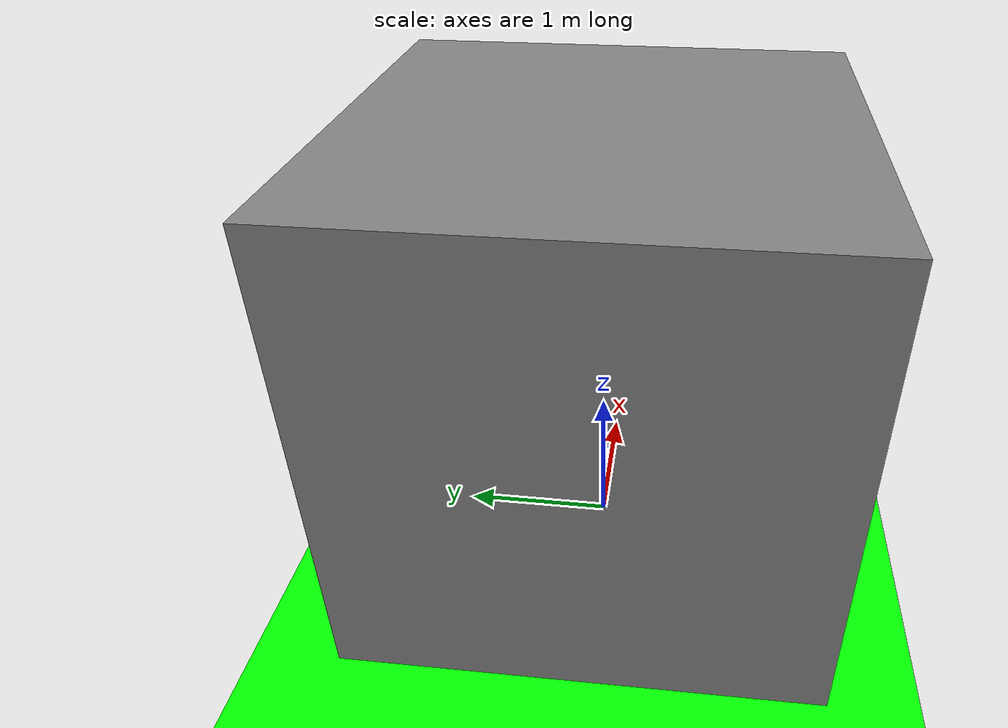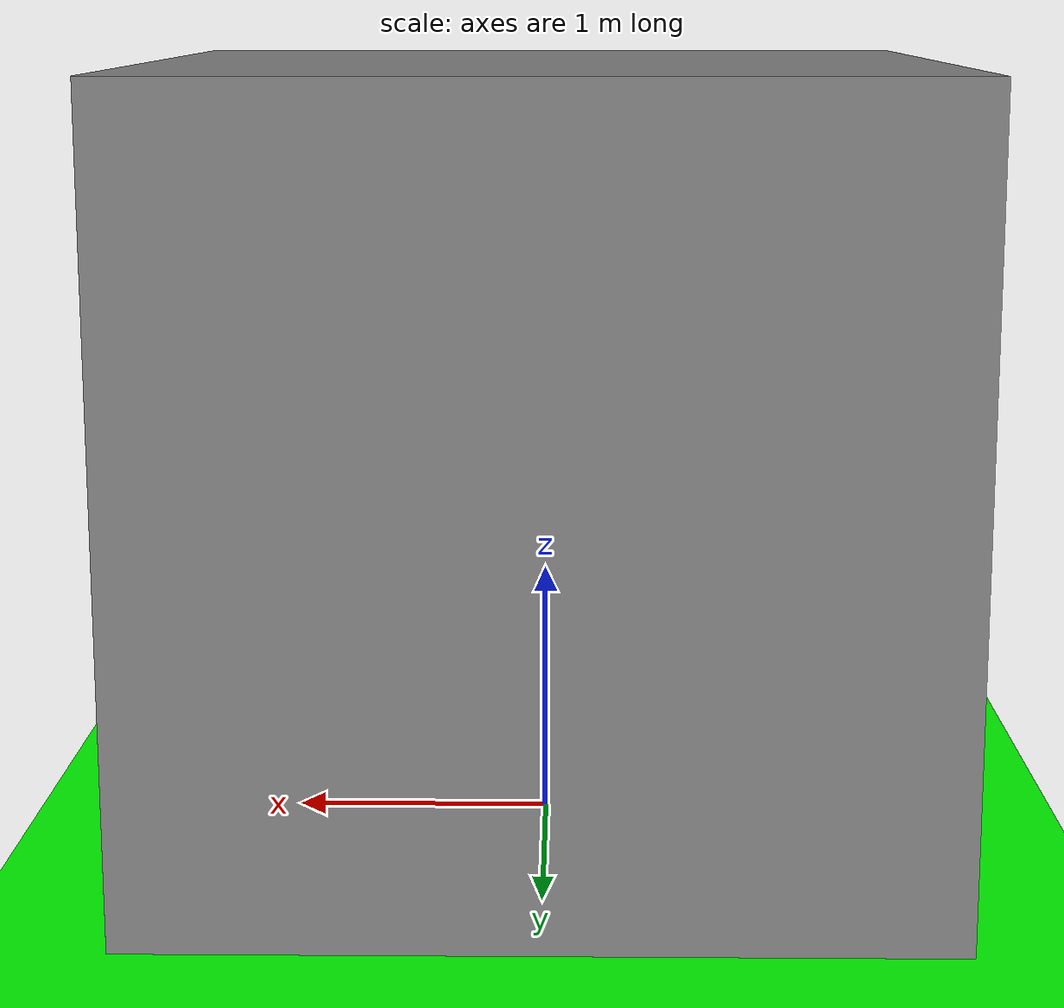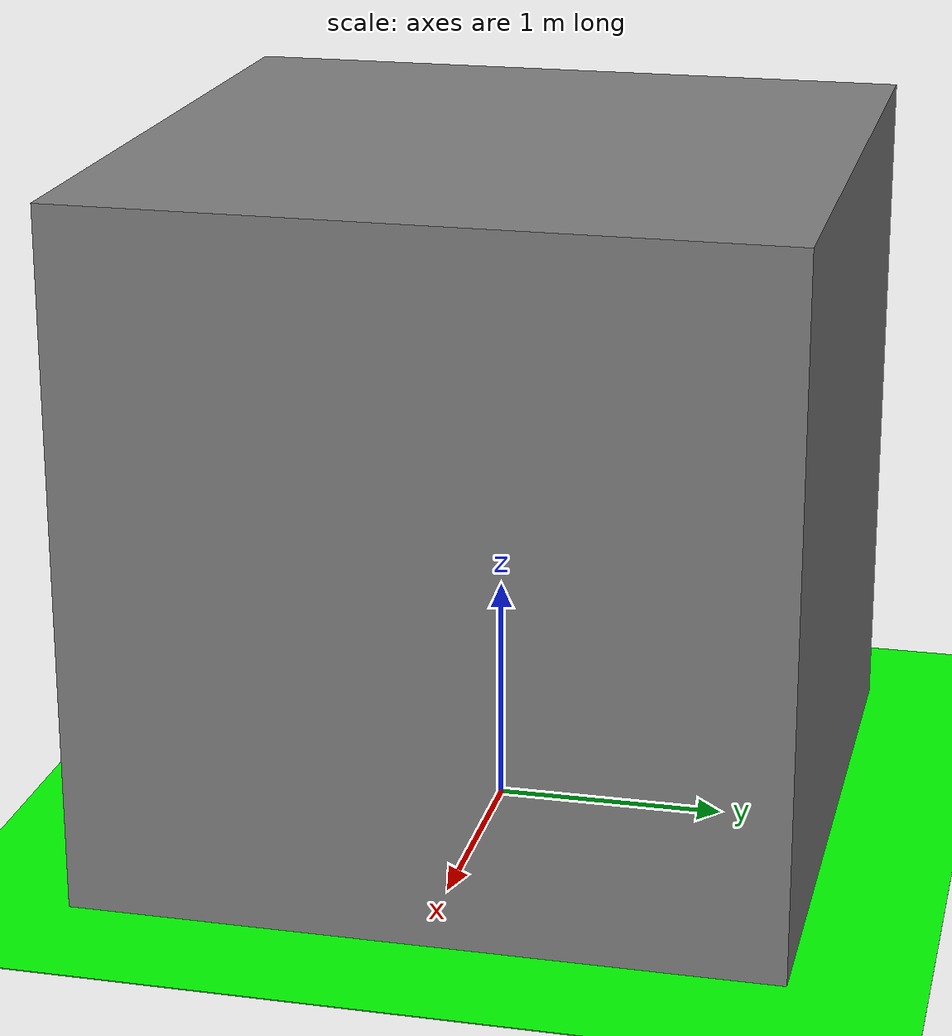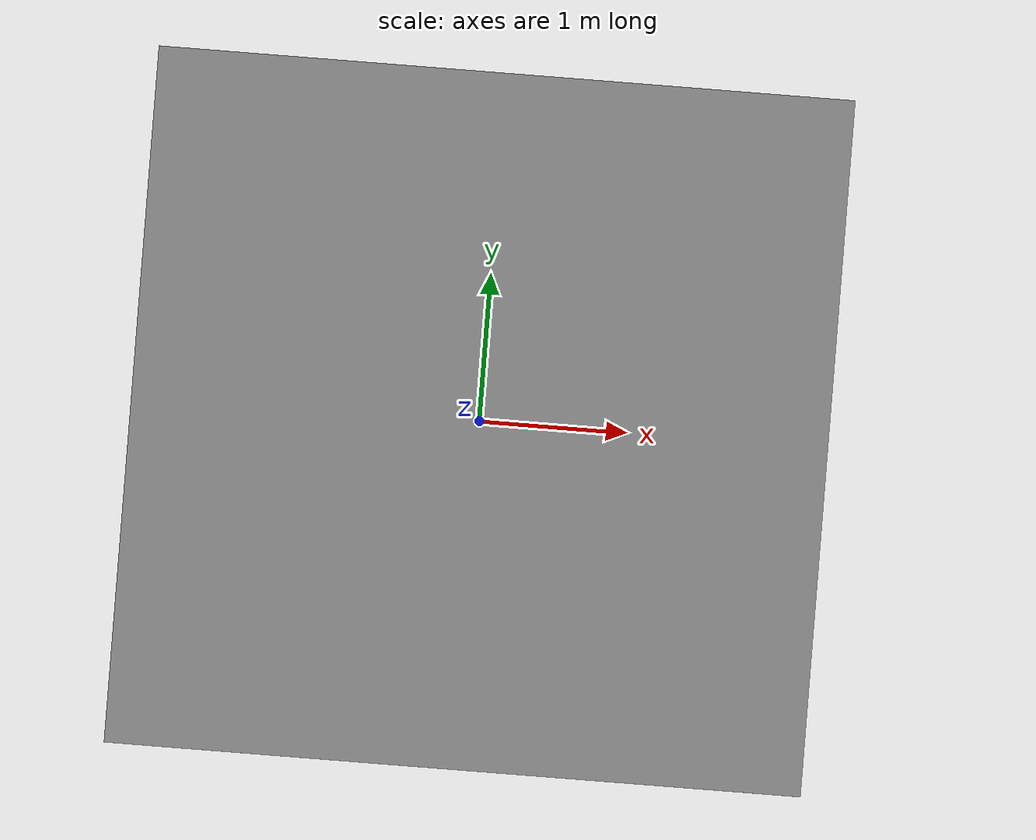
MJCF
<mujoco model="small box1">
    <worldbody>
        <body name="box" pos="0 0 1.5">
            <geom size="1.5 1.5 1.5" type="box"/>
            <joint axis="1 0 0" name="box:x" type="slide"/>
            <joint axis="0 1 0" name="box:y" type="slide"/>
        </body>
        <body name="floor" pos="0 0 0">
            <geom size="10 10 0.002" rgba="0 1 0 1" type="box"/>
        </body>
    </worldbody>
</mujoco>
